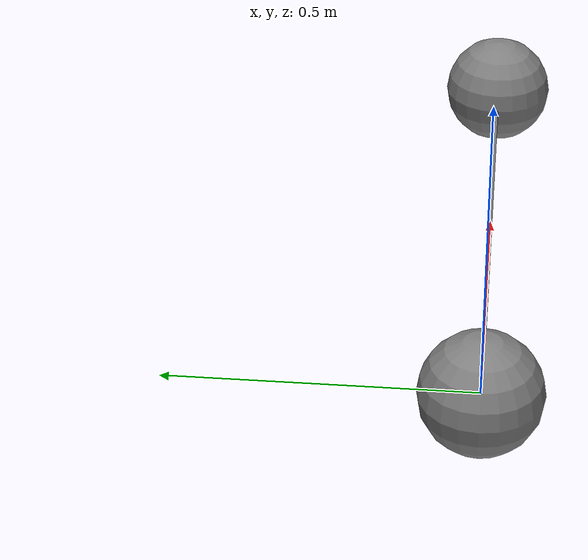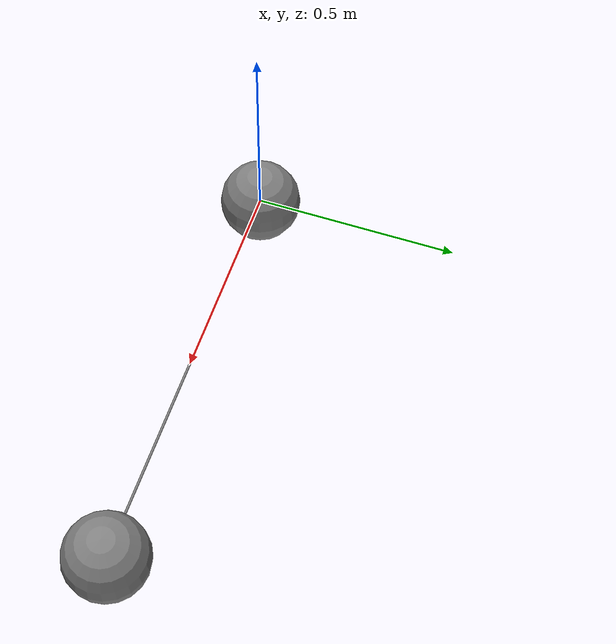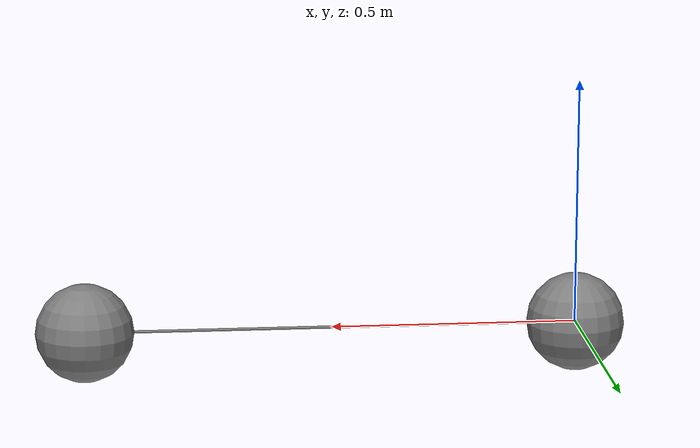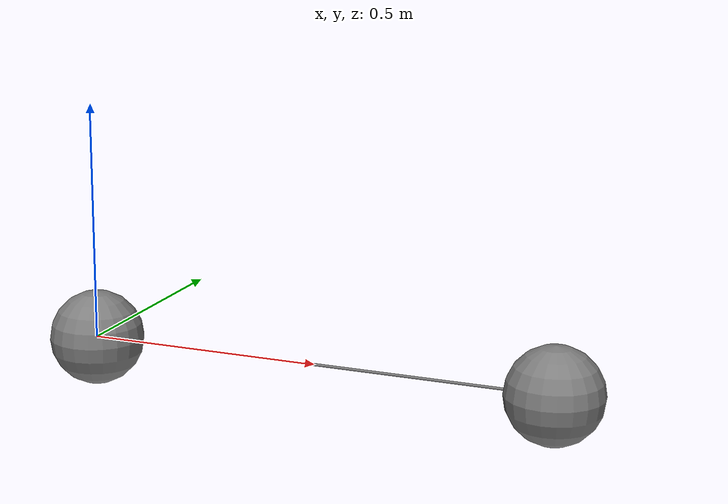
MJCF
<mujoco>
          <worldbody>
            <body name="b1" pos="0 0 0">
              <site name="s1" pos="0 0 0"/>
              <geom type="sphere" size="0.1" mass="1.0"/>
            </body>
            <body name="b2" pos="1 0 0">
              <site name="s2" pos="0 0 0"/>
              <geom type="sphere" size="0.1" mass="1.0"/>
            </body>
          </worldbody>
          <tendon>
            <spatial name="t" springlength="0.5 0.8">
              <site site="s1"/>
              <site site="s2"/>
            </spatial>
          </tendon>
        </mujoco>
